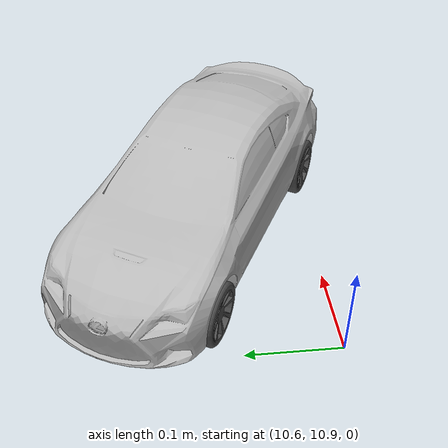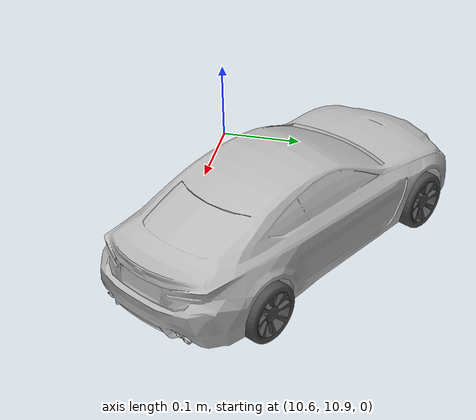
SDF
<sdf version="1.7">
 <world name="bfmc_official">
  <model name="automobile_obstacle_4">
   <static>1</static>
   <frame name="chassis::__model__" attached_to="chassis::link">
    <pose relative_to="__model__">0 0 0 0 -0 0</pose>
   </frame>
   <link name="chassis::link">
    <inertial>
     <mass>0.26244</mass>
     <inertia>
      <ixx>0.00283444</ixx>
      <ixy>0</ixy>
      <ixz>0</ixz>
      <iyy>0.00039867</iyy>
      <iyz>0</iyz>
      <izz>0.00323293</izz>
     </inertia>
    </inertial>
    <pose relative_to="chassis::__model__">0 0 0 0 -0 0</pose>
    <visual name="visual">
     <pose>0 0 -0.0065 0 -0 0</pose>
     <geometry><mesh><uri>model://chassis/meshes/chassisV5.dae</uri><scale>1 1 1</scale></mesh></geometry>
     <material>
      <lighting>1</lighting>
      <shader type="vertex"><normal_map>__default__</normal_map></shader>
      <ambient>0.6 0.6 0.6 1</ambient>
      <diffuse>0.85 0.85 0.85 1</diffuse>
      <specular>0.6 0.6 0.6 1</specular>
      <emissive>0 0 0 1</emissive>
     </material>
    </visual>
    <collision name="collision">
     <geometry><box><size>0.135 0.36 0.002</size></box></geometry>
     <surface>
      <friction>
       <ode><mu>1</mu><mu2>1</mu2><fdir1>0 0 0</fdir1><slip1>0</slip1><slip2>0</slip2></ode>
       <torsional>
        <coefficient>1</coefficient>
        <patch_radius>0</patch_radius>
        <surface_radius>0</surface_radius>
        <use_patch_radius>1</use_patch_radius>
        <ode><slip>0</slip></ode>
       </torsional>
      </friction>
      <bounce><restitution_coefficient>0</restitution_coefficient><threshold>1e+06</threshold></bounce>
      <contact>
       <collide_without_contact>0</collide_without_contact>
       <collide_without_contact_bitmask>1</collide_without_contact_bitmask>
       <collide_bitmask>1</collide_bitmask>
       <ode>
        <soft_cfm>0</soft_cfm>
        <soft_erp>0.2</soft_erp>
        <kp>1e+13</kp>
        <kd>1</kd>
        <max_vel>0.01</max_vel>
        <min_depth>0</min_depth>
       </ode>
       <bullet>
        <split_impulse>1</split_impulse>
        <split_impulse_penetration_threshold>-0.01</split_impulse_penetration_threshold>
        <soft_cfm>0</soft_cfm>
        <soft_erp>0.2</soft_erp>
        <kp>1e+13</kp>
        <kd>1</kd>
       </bullet>
      </contact>
     </surface>
    </collision>
   </link>
   <frame name="wheel_rear_left::__model__" attached_to="wheel_rear_left::link_rim">
    <pose relative_to="__model__">-0.152 0.081 0 0 -0 0</pose>
   </frame>
   <link name="wheel_rear_left::link_rim">
    <inertial>
     <mass>0.038</mass>
     <inertia>
      <ixx>1.283e-05</ixx>
      <ixy>0</ixy>
      <ixz>0</ixz>
      <iyy>1.283e-05</iyy>
      <iyz>0</iyz>
      <izz>2.069e-05</izz>
     </inertia>
    </inertial>
    <pose relative_to="wheel_rear_left::__model__">0 0 0 1.5708 -0 0</pose>
    <visual name="visual">
     <pose>0 0 0 -1.5708 0 0</pose>
     <geometry><mesh><uri>model://wheel_left/meshes/rim.dae</uri><scale>1 1 1</scale></mesh></geometry>
     <material>
      <lighting>1</lighting>
      <shader type="vertex"><normal_map>__default__</normal_map></shader>
      <ambient>0.2 0.2 0.2 1</ambient>
      <diffuse>0.3 0.3 0.3 1</diffuse>
      <specular>0.5 0.5 0.5 1</specular>
      <emissive>0 0 0 0</emissive>
     </material>
    </visual>
    <collision name="collision">
     <geometry><cylinder><radius>0.033</radius><length>0.028</length></cylinder></geometry>
     <surface>
      <friction>
       <ode><mu>0.7</mu><mu2>0.7</mu2><fdir1>0 0 0</fdir1><slip1>0</slip1><slip2>0</slip2></ode>
       <torsional>
        <coefficient>1</coefficient>
        <patch_radius>0</patch_radius>
        <surface_radius>0</surface_radius>
        <use_patch_radius>1</use_patch_radius>
        <ode><slip>0</slip></ode>
       </torsional>
      </friction>
      <bounce><restitution_coefficient>0</restitution_coefficient><threshold>1e+06</threshold></bounce>
      <contact>
       <collide_without_contact>0</collide_without_contact>
       <collide_without_contact_bitmask>1</collide_without_contact_bitmask>
       <collide_bitmask>1</collide_bitmask>
       <ode>
        <soft_cfm>0</soft_cfm>
        <soft_erp>0.2</soft_erp>
        <kp>1e+07</kp>
        <kd>1</kd>
        <max_vel>0.01</max_vel>
        <min_depth>0</min_depth>
       </ode>
       <bullet>
        <split_impulse>1</split_impulse>
        <split_impulse_penetration_threshold>-0.01</split_impulse_penetration_threshold>
        <soft_cfm>0</soft_cfm>
        <soft_erp>0.2</soft_erp>
        <kp>1e+07</kp>
        <kd>1</kd>
       </bullet>
      </contact>
     </surface>
    </collision>
   </link>
   <frame name="wheel_rear_right::__model__" attached_to="wheel_rear_right::link_rim">
    <pose relative_to="__model__">-0.152 -0.081 0 0 -0 0</pose>
   </frame>
   <link name="wheel_rear_right::link_rim">
    <inertial>
     <mass>0.038</mass>
     <inertia>
      <ixx>1.283e-05</ixx>
      <ixy>0</ixy>
      <ixz>0</ixz>
      <iyy>1.283e-05</iyy>
      <iyz>0</iyz>
      <izz>2.069e-05</izz>
     </inertia>
    </inertial>
    <pose relative_to="wheel_rear_right::__model__">0 0 0 1.5708 -0 0</pose>
    <visual name="visual">
     <pose>0 0 0 -1.5708 0 0</pose>
     <geometry><mesh><uri>model://wheel_right/meshes/rim.dae</uri><scale>1 1 1</scale></mesh></geometry>
     <material>
      <lighting>1</lighting>
      <shader type="vertex"><normal_map>__default__</normal_map></shader>
      <ambient>0.2 0.2 0.2 1</ambient>
      <diffuse>0.3 0.3 0.3 1</diffuse>
      <specular>0.5 0.5 0.5 1</specular>
      <emissive>0 0 0 0</emissive>
     </material>
    </visual>
    <collision name="collision">
     <geometry><cylinder><radius>0.033</radius><length>0.028</length></cylinder></geometry>
     <surface>
      <friction>
       <ode><mu>0.7</mu><mu2>0.7</mu2><fdir1>0 0 0</fdir1><slip1>0</slip1><slip2>0</slip2></ode>
       <torsional>
        <coefficient>1</coefficient>
        <patch_radius>0</patch_radius>
        <surface_radius>0</surface_radius>
        <use_patch_radius>1</use_patch_radius>
        <ode><slip>0</slip></ode>
       </torsional>
      </friction>
      <bounce><restitution_coefficient>0</restitution_coefficient><threshold>1e+06</threshold></bounce>
      <contact>
       <collide_without_contact>0</collide_without_contact>
       <collide_without_contact_bitmask>1</collide_without_contact_bitmask>
       <collide_bitmask>1</collide_bitmask>
       <ode>
        <soft_cfm>0</soft_cfm>
        <soft_erp>0.2</soft_erp>
        <kp>1e+07</kp>
        <kd>1</kd>
        <max_vel>0.01</max_vel>
        <min_depth>0</min_depth>
       </ode>
       <bullet>
        <split_impulse>1</split_impulse>
        <split_impulse_penetration_threshold>-0.01</split_impulse_penetration_threshold>
        <soft_cfm>0</soft_cfm>
        <soft_erp>0.2</soft_erp>
        <kp>1e+07</kp>
        <kd>1</kd>
       </bullet>
      </contact>
     </surface>
    </collision>
   </link>
   <frame name="steer_left::__model__" attached_to="steer_left::link_steer">
    <pose relative_to="__model__">0.112 0.0725 0 0 -0 0</pose>
   </frame>
   <link name="steer_left::link_steer">
    <inertial>
     <mass>0.001</mass>
     <inertia>
      <ixx>0.00014583</ixx>
      <ixy>0</ixy>
      <ixz>0</ixz>
      <iyy>0.00014583</iyy>
      <iyz>0</iyz>
      <izz>0.000125</izz>
     </inertia>
    </inertial>
    <pose relative_to="steer_left::__model__">0 0 0 1.5708 -0 0</pose>
    <visual name="visual">
     <geometry><cylinder><radius>0.001</radius><length>0.01</length></cylinder></geometry>
     <material>
      <lighting>1</lighting>
      <script><uri>file://media/materials/scripts/gazebo.material</uri><name>Gazebo/Grey</name></script>
      <shader type="vertex"><normal_map>__default__</normal_map></shader>
      <ambient>0.3 0.3 0.3 1</ambient>
      <diffuse>0.7 0.7 0.7 1</diffuse>
      <specular>0.01 0.01 0.01 1</specular>
      <emissive>0 0 0 1</emissive>
     </material>
    </visual>
    <collision name="collision">
     <geometry><cylinder><radius>0.001</radius><length>0.01</length></cylinder></geometry>
     <surface>
      <friction>
       <ode><mu>1</mu><mu2>1</mu2><fdir1>0 0 0</fdir1><slip1>0</slip1><slip2>0</slip2></ode>
       <torsional>
        <coefficient>1</coefficient>
        <patch_radius>0</patch_radius>
        <surface_radius>0</surface_radius>
        <use_patch_radius>1</use_patch_radius>
        <ode><slip>0</slip></ode>
       </torsional>
      </friction>
      <bounce><restitution_coefficient>0</restitution_coefficient><threshold>1e+06</threshold></bounce>
      <contact>
       <collide_without_contact>0</collide_without_contact>
       <collide_without_contact_bitmask>1</collide_without_contact_bitmask>
       <collide_bitmask>1</collide_bitmask>
       <ode>
        <soft_cfm>0</soft_cfm>
        <soft_erp>0.2</soft_erp>
        <kp>1e+13</kp>
        <kd>1</kd>
        <max_vel>0.01</max_vel>
        <min_depth>0</min_depth>
       </ode>
       <bullet>
        <split_impulse>1</split_impulse>
        <split_impulse_penetration_threshold>-0.01</split_impulse_penetration_threshold>
        <soft_cfm>0</soft_cfm>
        <soft_erp>0.2</soft_erp>
        <kp>1e+13</kp>
        <kd>1</kd>
       </bullet>
      </contact>
     </surface>
    </collision>
   </link>
   <frame name="steer_right::__model__" attached_to="steer_right::link_steer">
    <pose relative_to="__model__">0.112 -0.0725 0 0 -0 0</pose>
   </frame>
   <link name="steer_right::link_steer">
    <inertial>
     <mass>0.001</mass>
     <inertia>
      <ixx>0.00014583</ixx>
      <ixy>0</ixy>
      <ixz>0</ixz>
      <iyy>0.00014583</iyy>
      <iyz>0</iyz>
      <izz>0.000125</izz>
     </inertia>
    </inertial>
    <pose relative_to="steer_right::__model__">0 0 0 1.5708 -0 0</pose>
    <visual name="visual">
     <geometry><cylinder><radius>0.001</radius><length>0.01</length></cylinder></geometry>
     <material>
      <lighting>1</lighting>
      <script><uri>file://media/materials/scripts/gazebo.material</uri><name>Gazebo/Grey</name></script>
      <shader type="vertex"><normal_map>__default__</normal_map></shader>
      <ambient>0.3 0.3 0.3 1</ambient>
      <diffuse>0.7 0.7 0.7 1</diffuse>
      <specular>0.01 0.01 0.01 1</specular>
      <emissive>0 0 0 1</emissive>
     </material>
    </visual>
    <collision name="collision">
     <geometry><cylinder><radius>0.001</radius><length>0.01</length></cylinder></geometry>
     <surface>
      <friction>
       <ode><mu>1</mu><mu2>1</mu2><fdir1>0 0 0</fdir1><slip1>0</slip1><slip2>0</slip2></ode>
       <torsional>
        <coefficient>1</coefficient>
        <patch_radius>0</patch_radius>
        <surface_radius>0</surface_radius>
        <use_patch_radius>1</use_patch_radius>
        <ode><slip>0</slip></ode>
       </torsional>
      </friction>
      <bounce><restitution_coefficient>0</restitution_coefficient><threshold>1e+06</threshold></bounce>
      <contact>
       <collide_without_contact>0</collide_without_contact>
       <collide_without_contact_bitmask>1</collide_without_contact_bitmask>
       <collide_bitmask>1</collide_bitmask>
       <ode>
        <soft_cfm>0</soft_cfm>
        <soft_erp>0.2</soft_erp>
        <kp>1e+13</kp>
        <kd>1</kd>
        <max_vel>0.01</max_vel>
        <min_depth>0</min_depth>
       </ode>
       <bullet>
        <split_impulse>1</split_impulse>
        <split_impulse_penetration_threshold>-0.01</split_impulse_penetration_threshold>
        <soft_cfm>0</soft_cfm>
        <soft_erp>0.2</soft_erp>
        <kp>1e+13</kp>
        <kd>1</kd>
       </bullet>
      </contact>
     </surface>
    </collision>
   </link>
   <frame name="wheel_front_left::__model__" attached_to="wheel_front_left::link_rim">
    <pose relative_to="__model__">0.118 0.081 0 0 -0 0</pose>
   </frame>
   <link name="wheel_front_left::link_rim">
    <inertial>
     <mass>0.038</mass>
     <inertia>
      <ixx>1.283e-05</ixx>
      <ixy>0</ixy>
      <ixz>0</ixz>
      <iyy>1.283e-05</iyy>
      <iyz>0</iyz>
      <izz>2.069e-05</izz>
     </inertia>
    </inertial>
    <pose relative_to="wheel_front_left::__model__">0 0 0 1.5708 -0 0</pose>
    <visual name="visual">
     <pose>0 0 0 -1.5708 0 0</pose>
     <geometry><mesh><uri>model://wheel_left/meshes/rim.dae</uri><scale>1 1 1</scale></mesh></geometry>
     <material>
      <lighting>1</lighting>
      <shader type="vertex"><normal_map>__default__</normal_map></shader>
      <ambient>0.2 0.2 0.2 1</ambient>
      <diffuse>0.3 0.3 0.3 1</diffuse>
      <specular>0.5 0.5 0.5 1</specular>
      <emissive>0 0 0 0</emissive>
     </material>
    </visual>
    <collision name="collision">
     <geometry><cylinder><radius>0.033</radius><length>0.028</length></cylinder></geometry>
     <surface>
      <friction>
       <ode><mu>0.7</mu><mu2>0.7</mu2><fdir1>0 0 0</fdir1><slip1>0</slip1><slip2>0</slip2></ode>
       <torsional>
        <coefficient>1</coefficient>
        <patch_radius>0</patch_radius>
        <surface_radius>0</surface_radius>
        <use_patch_radius>1</use_patch_radius>
        <ode><slip>0</slip></ode>
       </torsional>
      </friction>
      <bounce><restitution_coefficient>0</restitution_coefficient><threshold>1e+06</threshold></bounce>
      <contact>
       <collide_without_contact>0</collide_without_contact>
       <collide_without_contact_bitmask>1</collide_without_contact_bitmask>
       <collide_bitmask>1</collide_bitmask>
       <ode>
        <soft_cfm>0</soft_cfm>
        <soft_erp>0.2</soft_erp>
        <kp>1e+07</kp>
        <kd>1</kd>
        <max_vel>0.01</max_vel>
        <min_depth>0</min_depth>
       </ode>
       <bullet>
        <split_impulse>1</split_impulse>
        <split_impulse_penetration_threshold>-0.01</split_impulse_penetration_threshold>
        <soft_cfm>0</soft_cfm>
        <soft_erp>0.2</soft_erp>
        <kp>1e+07</kp>
        <kd>1</kd>
       </bullet>
      </contact>
     </surface>
    </collision>
   </link>
   <frame name="wheel_front_right::__model__" attached_to="wheel_front_right::link_rim">
    <pose relative_to="__model__">0.118 -0.081 0 0 -0 0</pose>
   </frame>
   <link name="wheel_front_right::link_rim">
    <inertial>
     <mass>0.038</mass>
     <inertia>
      <ixx>1.283e-05</ixx>
      <ixy>0</ixy>
      <ixz>0</ixz>
      <iyy>1.283e-05</iyy>
      <iyz>0</iyz>
      <izz>2.069e-05</izz>
     </inertia>
    </inertial>
    <pose relative_to="wheel_front_right::__model__">0 0 0 1.5708 -0 0</pose>
    <visual name="visual">
     <pose>0 0 0 -1.5708 0 0</pose>
     <geometry><mesh><uri>model://wheel_right/meshes/rim.dae</uri><scale>1 1 1</scale></mesh></geometry>
     <material>
      <lighting>1</lighting>
      <shader type="vertex"><normal_map>__default__</normal_map></shader>
      <ambient>0.2 0.2 0.2 1</ambient>
      <diffuse>0.3 0.3 0.3 1</diffuse>
      <specular>0.5 0.5 0.5 1</specular>
      <emissive>0 0 0 0</emissive>
     </material>
    </visual>
    <collision name="collision">
     <geometry><cylinder><radius>0.033</radius><length>0.028</length></cylinder></geometry>
     <surface>
      <friction>
       <ode><mu>0.7</mu><mu2>0.7</mu2><fdir1>0 0 0</fdir1><slip1>0</slip1><slip2>0</slip2></ode>
       <torsional>
        <coefficient>1</coefficient>
        <patch_radius>0</patch_radius>
        <surface_radius>0</surface_radius>
        <use_patch_radius>1</use_patch_radius>
        <ode><slip>0</slip></ode>
       </torsional>
      </friction>
      <bounce><restitution_coefficient>0</restitution_coefficient><threshold>1e+06</threshold></bounce>
      <contact>
       <collide_without_contact>0</collide_without_contact>
       <collide_without_contact_bitmask>1</collide_without_contact_bitmask>
       <collide_bitmask>1</collide_bitmask>
       <ode>
        <soft_cfm>0</soft_cfm>
        <soft_erp>0.2</soft_erp>
        <kp>1e+07</kp>
        <kd>1</kd>
        <max_vel>0.01</max_vel>
        <min_depth>0</min_depth>
       </ode>
       <bullet>
        <split_impulse>1</split_impulse>
        <split_impulse_penetration_threshold>-0.01</split_impulse_penetration_threshold>
        <soft_cfm>0</soft_cfm>
        <soft_erp>0.2</soft_erp>
        <kp>1e+07</kp>
        <kd>1</kd>
       </bullet>
      </contact>
     </surface>
    </collision>
   </link>
   <frame name="car_body::__model__" attached_to="car_body::link">
    <pose relative_to="__model__">-0.024 0 -0.028 0 -0 0</pose>
   </frame>
   <link name="car_body::link">
    <inertial>
     <mass>1</mass>
     <inertia>
      <ixx>0.166667</ixx>
      <ixy>0</ixy>
      <ixz>0</ixz>
      <iyy>0.166667</iyy>
      <iyz>0</iyz>
      <izz>0.166667</izz>
     </inertia>
    </inertial>
    <pose relative_to="car_body::__model__">0 -0 0 0 -0 0</pose>
    <visual name="visual">
     <geometry><mesh><uri>model://car_body/meshes/CarBody.dae</uri><scale>1 1 1</scale></mesh></geometry>
     <material>
      <script>
       <uri>model://car_body/materials/scripts</uri>
       <uri>model://car_body/materials/textures</uri>
       <name>CarBody/Image</name>
      </script>
     </material>
    </visual>
   </link>
   <static>0</static>
   <joint name="joint_leftrear_rim" type="fixed">
    <parent>chassis::link</parent>
    <child>wheel_rear_left::link_rim</child>
   </joint>
   <joint name="joint_rightrear_rim" type="fixed">
    <parent>chassis::link</parent>
    <child>wheel_rear_right::link_rim</child>
   </joint>
   <joint name="joint_rightfront_rim" type="fixed">
    <parent>chassis::link</parent>
    <child>wheel_front_right::link_rim</child>
   </joint>
   <joint name="joint_leftfront_rim" type="fixed">
    <parent>chassis::link</parent>
    <child>wheel_front_left::link_rim</child>
   </joint>
   <joint name="joint_body" type="fixed"><parent>chassis::link</parent><child>car_body::link</child></joint>
   <pose>10.7857 11.0385 0.016986 0 -0 2.63452</pose>
  </model>
 </world>
</sdf>
